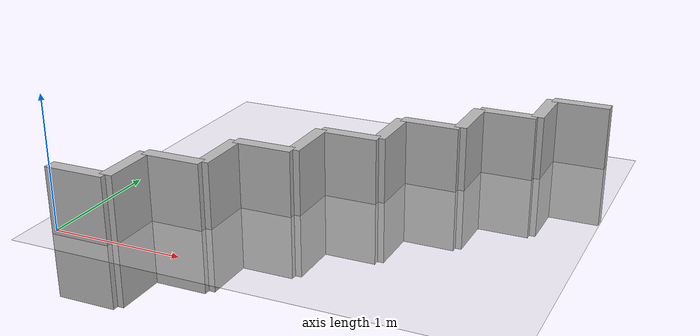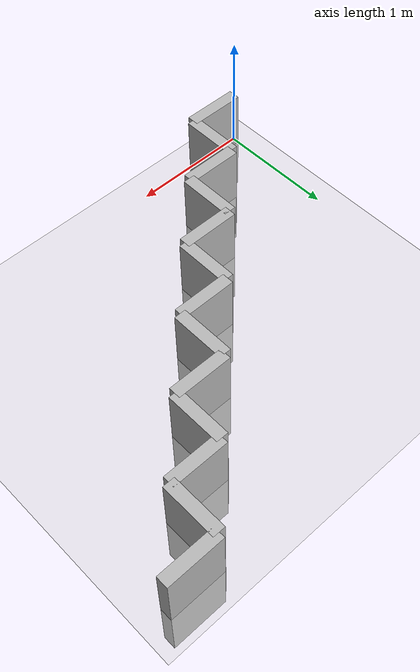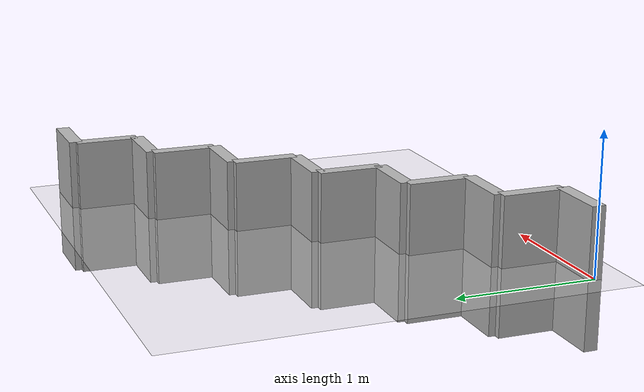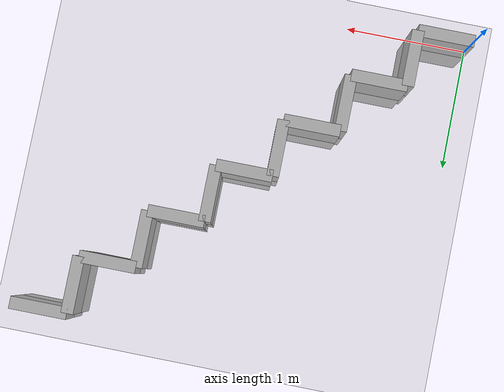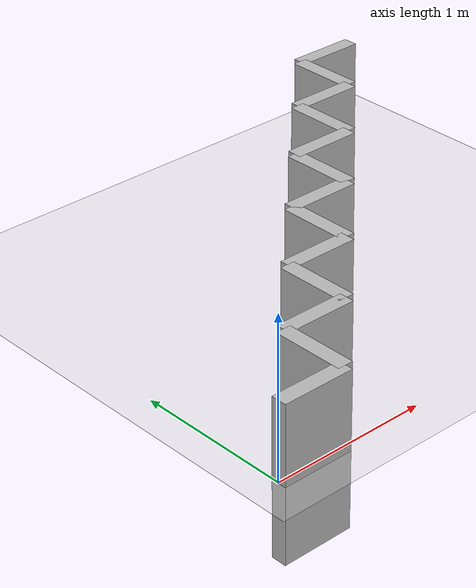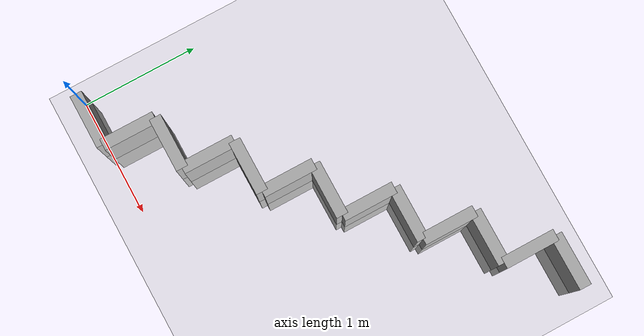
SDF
<?xml version="1.0" ?>
<sdf version="1.6">
  <world name="default">
    <include>
      <uri>model://ground_plane</uri>
    </include>
    <include>
      <uri>model://sun</uri>
    </include>

    <model name="wall_0">
      <static>true</static>
      <link name="link">
        <pose>0.23076923076923078 0 0 0 0 0</pose>
        <collision name="collision">
          <geometry>
            <box>
              <size>0.46153846153846156 0.1 1.0</size>
            </box>
          </geometry>
        </collision>
        <visual name="visual">
          <geometry>
            <box>
              <size>0.46153846153846156 0.1 1.0</size>
            </box>
          </geometry>
        </visual>
      </link>
    </model>

    <model name="wall_1">
      <static>true</static>
      <link name="link">
        <pose>0.46153846153846156 0.23076923076923078 0 0 0 1.57</pose>
        <collision name="collision">
          <geometry>
            <box>
              <size>0.46153846153846156 0.1 1.0</size>
            </box>
          </geometry>
        </collision>
        <visual name="visual">
          <geometry>
            <box>
              <size>0.46153846153846156 0.1 1.0</size>
            </box>
          </geometry>
        </visual>
      </link>
    </model>

    <model name="wall_2">
      <static>true</static>
      <link name="link">
        <pose>0.6923076923076923 0.46153846153846156 0 0 0 0</pose>
        <collision name="collision">
          <geometry>
            <box>
              <size>0.46153846153846156 0.1 1.0</size>
            </box>
          </geometry>
        </collision>
        <visual name="visual">
          <geometry>
            <box>
              <size>0.46153846153846156 0.1 1.0</size>
            </box>
          </geometry>
        </visual>
      </link>
    </model>

    <model name="wall_3">
      <static>true</static>
      <link name="link">
        <pose>0.9230769230769231 0.6923076923076923 0 0 0 1.57</pose>
        <collision name="collision">
          <geometry>
            <box>
              <size>0.46153846153846156 0.1 1.0</size>
            </box>
          </geometry>
        </collision>
        <visual name="visual">
          <geometry>
            <box>
              <size>0.46153846153846156 0.1 1.0</size>
            </box>
          </geometry>
        </visual>
      </link>
    </model>

    <model name="wall_4">
      <static>true</static>
      <link name="link">
        <pose>1.153846153846154 0.9230769230769231 0 0 0 0</pose>
        <collision name="collision">
          <geometry>
            <box>
              <size>0.46153846153846156 0.1 1.0</size>
            </box>
          </geometry>
        </collision>
        <visual name="visual">
          <geometry>
            <box>
              <size>0.46153846153846156 0.1 1.0</size>
            </box>
          </geometry>
        </visual>
      </link>
    </model>

    <model name="wall_5">
      <static>true</static>
      <link name="link">
        <pose>1.3846153846153848 1.153846153846154 0 0 0 1.57</pose>
        <collision name="collision">
          <geometry>
            <box>
              <size>0.46153846153846156 0.1 1.0</size>
            </box>
          </geometry>
        </collision>
        <visual name="visual">
          <geometry>
            <box>
              <size>0.46153846153846156 0.1 1.0</size>
            </box>
          </geometry>
        </visual>
      </link>
    </model>

    <model name="wall_6">
      <static>true</static>
      <link name="link">
        <pose>1.6153846153846156 1.3846153846153848 0 0 0 0</pose>
        <collision name="collision">
          <geometry>
            <box>
              <size>0.46153846153846156 0.1 1.0</size>
            </box>
          </geometry>
        </collision>
        <visual name="visual">
          <geometry>
            <box>
              <size>0.46153846153846156 0.1 1.0</size>
            </box>
          </geometry>
        </visual>
      </link>
    </model>

    <model name="wall_7">
      <static>true</static>
      <link name="link">
        <pose>1.8461538461538465 1.6153846153846156 0 0 0 1.57</pose>
        <collision name="collision">
          <geometry>
            <box>
              <size>0.46153846153846156 0.1 1.0</size>
            </box>
          </geometry>
        </collision>
        <visual name="visual">
          <geometry>
            <box>
              <size>0.46153846153846156 0.1 1.0</size>
            </box>
          </geometry>
        </visual>
      </link>
    </model>

    <model name="wall_8">
      <static>true</static>
      <link name="link">
        <pose>2.076923076923077 1.8461538461538465 0 0 0 0</pose>
        <collision name="collision">
          <geometry>
            <box>
              <size>0.46153846153846156 0.1 1.0</size>
            </box>
          </geometry>
        </collision>
        <visual name="visual">
          <geometry>
            <box>
              <size>0.46153846153846156 0.1 1.0</size>
            </box>
          </geometry>
        </visual>
      </link>
    </model>

    <model name="wall_9">
      <static>true</static>
      <link name="link">
        <pose>2.307692307692308 2.076923076923077 0 0 0 1.57</pose>
        <collision name="collision">
          <geometry>
            <box>
              <size>0.46153846153846156 0.1 1.0</size>
            </box>
          </geometry>
        </collision>
        <visual name="visual">
          <geometry>
            <box>
              <size>0.46153846153846156 0.1 1.0</size>
            </box>
          </geometry>
        </visual>
      </link>
    </model>

    <model name="wall_10">
      <static>true</static>
      <link name="link">
        <pose>2.5384615384615388 2.307692307692308 0 0 0 0</pose>
        <collision name="collision">
          <geometry>
            <box>
              <size>0.46153846153846156 0.1 1.0</size>
            </box>
          </geometry>
        </collision>
        <visual name="visual">
          <geometry>
            <box>
              <size>0.46153846153846156 0.1 1.0</size>
            </box>
          </geometry>
        </visual>
      </link>
    </model>

    <model name="wall_11">
      <static>true</static>
      <link name="link">
        <pose>2.7692307692307696 2.5384615384615388 0 0 0 1.57</pose>
        <collision name="collision">
          <geometry>
            <box>
              <size>0.46153846153846156 0.1 1.0</size>
            </box>
          </geometry>
        </collision>
        <visual name="visual">
          <geometry>
            <box>
              <size>0.46153846153846156 0.1 1.0</size>
            </box>
          </geometry>
        </visual>
      </link>
    </model>

    <model name="wall_12">
      <static>true</static>
      <link name="link">
        <pose>3.0000000000000004 2.7692307692307696 0 0 0 0</pose>
        <collision name="collision">
          <geometry>
            <box>
              <size>0.46153846153846156 0.1 1.0</size>
            </box>
          </geometry>
        </collision>
        <visual name="visual">
          <geometry>
            <box>
              <size>0.46153846153846156 0.1 1.0</size>
            </box>
          </geometry>
        </visual>
      </link>
    </model>

  </world>
</sdf>
